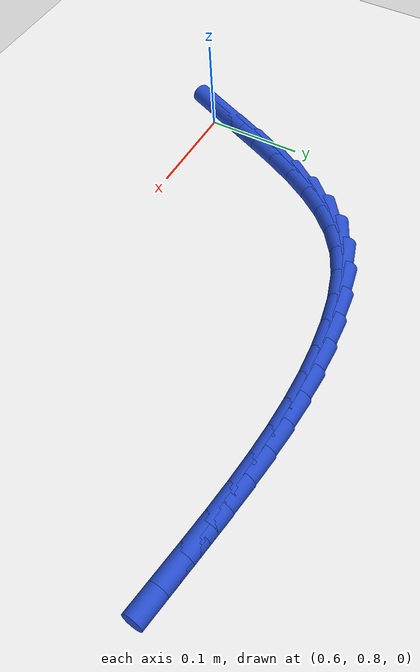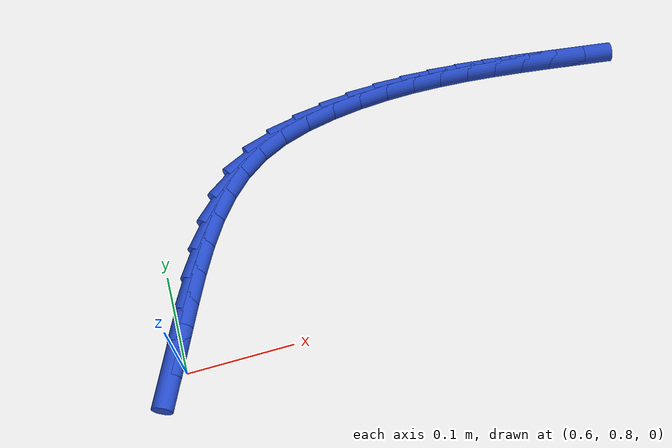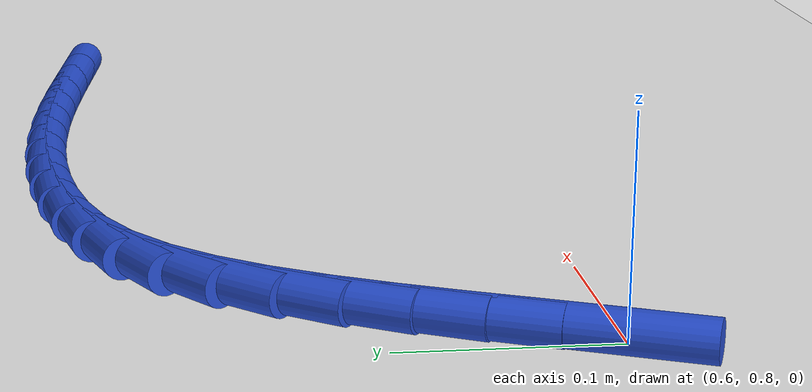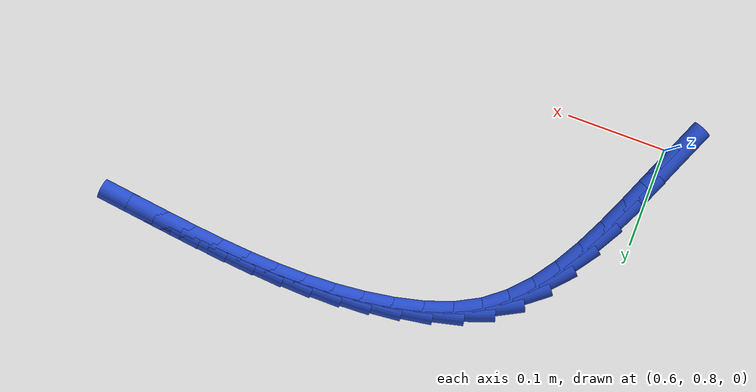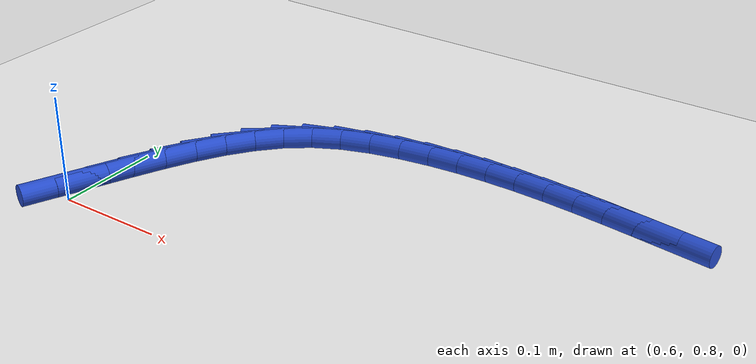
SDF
<sdf version="1.6">
 <world name="default">
  <model name="ground_plane">
   <static>1</static>
   <link name="link">
    <collision name="collision">
     <geometry><plane><normal>0 0 1</normal><size>100 100</size></plane></geometry>
     <surface><friction><ode><mu>100</mu><mu2>50</mu2></ode></friction></surface>
    </collision>
    <visual name="visual">
     <cast_shadows>0</cast_shadows>
     <geometry><plane><normal>0 0 1</normal><size>100 100</size></plane></geometry>
     <material>
      <script><uri>file://media/materials/scripts/gazebo.material</uri><name>Gazebo/WhiteGlow</name></script>
     </material>
    </visual>
   </link>
  </model>
  <model name="line">
   <link name="link_35">
    <pose>0.5892011900685988 0.8050717439799011 0.01 0 1.57 1.158797115858197</pose>
    <collision name="collision">
     <geometry><cylinder><radius>0.01</radius><length>0.08</length></cylinder></geometry>
    </collision>
    <visual name="visual">
     <material>
      <script><name>Gazebo/Blue</name><uri>file://media/materials/scripts/gazebo.material</uri></script>
     </material>
     <geometry><cylinder><radius>0.01</radius><length>0.08</length></cylinder></geometry>
    </visual>
   </link>
   <link name="link_36">
    <pose>0.6019191846150993 0.8341740306946807 0.01 0 1.57 1.1629992175297037</pose>
    <collision name="collision">
     <geometry><cylinder><radius>0.01</radius><length>0.08</length></cylinder></geometry>
    </collision>
    <visual name="visual">
     <material>
      <script><name>Gazebo/Blue</name><uri>file://media/materials/scripts/gazebo.material</uri></script>
     </material>
     <geometry><cylinder><radius>0.01</radius><length>0.08</length></cylinder></geometry>
    </visual>
   </link>
   <link name="link_37">
    <pose>0.614505534557941 0.8633081100338446 0.01 0 1.57 1.1453234444082492</pose>
    <collision name="collision">
     <geometry><cylinder><radius>0.01</radius><length>0.08</length></cylinder></geometry>
    </collision>
    <visual name="visual">
     <material>
      <script><name>Gazebo/Blue</name><uri>file://media/materials/scripts/gazebo.material</uri></script>
     </material>
     <geometry><cylinder><radius>0.01</radius><length>0.08</length></cylinder></geometry>
    </visual>
   </link>
   <link name="link_38">
    <pose>0.627461701556716 0.891899262433238 0.01 0 1.57 1.104511327123926</pose>
    <collision name="collision">
     <geometry><cylinder><radius>0.01</radius><length>0.08</length></cylinder></geometry>
    </collision>
    <visual name="visual">
     <material>
      <script><name>Gazebo/Blue</name><uri>file://media/materials/scripts/gazebo.material</uri></script>
     </material>
     <geometry><cylinder><radius>0.01</radius><length>0.08</length></cylinder></geometry>
    </visual>
   </link>
   <link name="link_39">
    <pose>0.6412891472710159 0.9193727683287055 0.01 0 1.57 1.038069745802098</pose>
    <collision name="collision">
     <geometry><cylinder><radius>0.01</radius><length>0.08</length></cylinder></geometry>
    </collision>
    <visual name="visual">
     <material>
      <script><name>Gazebo/Blue</name><uri>file://media/materials/scripts/gazebo.material</uri></script>
     </material>
     <geometry><cylinder><radius>0.01</radius><length>0.08</length></cylinder></geometry>
    </visual>
   </link>
   <link name="link_40">
    <pose>0.656489333360433 0.9451539081560925 0.01 0 1.57 0.9427442892445876</pose>
    <collision name="collision">
     <geometry><cylinder><radius>0.01</radius><length>0.08</length></cylinder></geometry>
    </collision>
    <visual name="visual">
     <material>
      <script><name>Gazebo/Blue</name><uri>file://media/materials/scripts/gazebo.material</uri></script>
     </material>
     <geometry><cylinder><radius>0.01</radius><length>0.08</length></cylinder></geometry>
    </visual>
   </link>
   <link name="link_41">
    <pose>0.6735637214845588 0.9686679623512437 0.01 0 1.57 0.8158505385536886</pose>
    <collision name="collision">
     <geometry><cylinder><radius>0.01</radius><length>0.08</length></cylinder></geometry>
    </collision>
    <visual name="visual">
     <material>
      <script><name>Gazebo/Blue</name><uri>file://media/materials/scripts/gazebo.material</uri></script>
     </material>
     <geometry><cylinder><radius>0.01</radius><length>0.08</length></cylinder></geometry>
    </visual>
   </link>
   <link name="link_42">
    <pose>0.6930137733029857 0.9893402113500045 0.01 0 1.57 0.6579700808070119</pose>
    <collision name="collision">
     <geometry><cylinder><radius>0.01</radius><length>0.08</length></cylinder></geometry>
    </collision>
    <visual name="visual">
     <material>
      <script><name>Gazebo/Blue</name><uri>file://media/materials/scripts/gazebo.material</uri></script>
     </material>
     <geometry><cylinder><radius>0.01</radius><length>0.08</length></cylinder></geometry>
    </visual>
   </link>
   <link name="link_43">
    <pose>0.7153409504753052 1.0065959355882195 0.01 0 1.57 0.48001958919318843</pose>
    <collision name="collision">
     <geometry><cylinder><radius>0.01</radius><length>0.08</length></cylinder></geometry>
    </collision>
    <visual name="visual">
     <material>
      <script><name>Gazebo/Blue</name><uri>file://media/materials/scripts/gazebo.material</uri></script>
     </material>
     <geometry><cylinder><radius>0.01</radius><length>0.08</length></cylinder></geometry>
    </visual>
   </link>
   <link name="link_44">
    <pose>0.7409533080757175 1.0199306444176994 0.01 0 1.57 0.32969359713967095</pose>
    <collision name="collision">
     <geometry><cylinder><radius>0.01</radius><length>0.08</length></cylinder></geometry>
    </collision>
    <visual name="visual">
     <material>
      <script><name>Gazebo/Blue</name><uri>file://media/materials/scripts/gazebo.material</uri></script>
     </material>
     <geometry><cylinder><radius>0.01</radius><length>0.08</length></cylinder></geometry>
    </visual>
   </link>
   <link name="link_45">
    <pose>0.7692364023389191 1.0296086258023132 0.01 0 1.57 0.2237279969301156</pose>
    <collision name="collision">
     <geometry><cylinder><radius>0.01</radius><length>0.08</length></cylinder></geometry>
    </collision>
    <visual name="visual">
     <material>
      <script><name>Gazebo/Blue</name><uri>file://media/materials/scripts/gazebo.material</uri></script>
     </material>
     <geometry><cylinder><radius>0.01</radius><length>0.08</length></cylinder></geometry>
    </visual>
   </link>
   <link name="link_46">
    <pose>0.7989450000686684 1.0363684346727768 0.01 0 1.57 0.15007415062330498</pose>
    <collision name="collision">
     <geometry><cylinder><radius>0.01</radius><length>0.08</length></cylinder></geometry>
    </collision>
    <visual name="visual">
     <material>
      <script><name>Gazebo/Blue</name><uri>file://media/materials/scripts/gazebo.material</uri></script>
     </material>
     <geometry><cylinder><radius>0.01</radius><length>0.08</length></cylinder></geometry>
    </visual>
   </link>
   <link name="link_47">
    <pose>0.8289473169587279 1.0409051169102694 0.01 0 1.57 0.0891030732480868</pose>
    <collision name="collision">
     <geometry><cylinder><radius>0.01</radius><length>0.08</length></cylinder></geometry>
    </collision>
    <visual name="visual">
     <material>
      <script><name>Gazebo/Blue</name><uri>file://media/materials/scripts/gazebo.material</uri></script>
     </material>
     <geometry><cylinder><radius>0.01</radius><length>0.08</length></cylinder></geometry>
    </visual>
   </link>
   <link name="link_48">
    <pose>0.8589165535003263 1.0435825574616524 0.01 0 1.57 0.03501761102344548</pose>
    <collision name="collision">
     <geometry><cylinder><radius>0.01</radius><length>0.08</length></cylinder></geometry>
    </collision>
    <visual name="visual">
     <material>
      <script><name>Gazebo/Blue</name><uri>file://media/materials/scripts/gazebo.material</uri></script>
     </material>
     <geometry><cylinder><radius>0.01</radius><length>0.08</length></cylinder></geometry>
    </visual>
   </link>
   <link name="link_49">
    <pose>0.888850292932611 1.0446311941649518 0.01 0 1.57 -0.011709678779971793</pose>
    <collision name="collision">
     <geometry><cylinder><radius>0.01</radius><length>0.08</length></cylinder></geometry>
    </collision>
    <visual name="visual">
     <material>
      <script><name>Gazebo/Blue</name><uri>file://media/materials/scripts/gazebo.material</uri></script>
     </material>
     <geometry><cylinder><radius>0.01</radius><length>0.08</length></cylinder></geometry>
    </visual>
   </link>
   <link name="link_50">
    <pose>0.9187470122362672 1.0442810971838181 0.01 0 1.57 -0.050822015321530814</pose>
    <collision name="collision">
     <geometry><cylinder><radius>0.01</radius><length>0.08</length></cylinder></geometry>
    </collision>
    <visual name="visual">
     <material>
      <script><name>Gazebo/Blue</name><uri>file://media/materials/scripts/gazebo.material</uri></script>
     </material>
     <geometry><cylinder><radius>0.01</radius><length>0.08</length></cylinder></geometry>
    </visual>
   </link>
   <link name="link_51">
    <pose>0.9486051883919803 1.0427623366819025 0.01 0 1.57 -0.08222564272332829</pose>
    <collision name="collision">
     <geometry><cylinder><radius>0.01</radius><length>0.08</length></cylinder></geometry>
    </collision>
    <visual name="visual">
     <material>
      <script><name>Gazebo/Blue</name><uri>file://media/materials/scripts/gazebo.material</uri></script>
     </material>
     <geometry><cylinder><radius>0.01</radius><length>0.08</length></cylinder></geometry>
    </visual>
   </link>
   <link name="link_52">
    <pose>0.978423298380436 1.040304982822856 0.01 0 1.57 -0.10592332431333239</pose>
    <collision name="collision">
     <geometry><cylinder><radius>0.01</radius><length>0.08</length></cylinder></geometry>
    </collision>
    <visual name="visual">
     <material>
      <script><name>Gazebo/Blue</name><uri>file://media/materials/scripts/gazebo.material</uri></script>
     </material>
     <geometry><cylinder><radius>0.01</radius><length>0.08</length></cylinder></geometry>
    </visual>
   </link>
   <link name="link_53">
    <pose>1.008199819182319 1.037139105770329 0.01 0 1.57 -0.12195855962618113</pose>
    <collision name="collision">
     <geometry><cylinder><radius>0.01</radius><length>0.08</length></cylinder></geometry>
    </collision>
    <visual name="visual">
     <material>
      <script><name>Gazebo/Blue</name><uri>file://media/materials/scripts/gazebo.material</uri></script>
     </material>
     <geometry><cylinder><radius>0.01</radius><length>0.08</length></cylinder></geometry>
    </visual>
   </link>
   <link name="link_54">
    <pose>1.0379332277783155 1.0334947756879727 0.01 0 1.57 -0.13037361600656563</pose>
    <collision name="collision">
     <geometry><cylinder><radius>0.01</radius><length>0.08</length></cylinder></geometry>
    </collision>
    <visual name="visual">
     <material>
      <script><name>Gazebo/Blue</name><uri>file://media/materials/scripts/gazebo.material</uri></script>
     </material>
     <geometry><cylinder><radius>0.01</radius><length>0.08</length></cylinder></geometry>
    </visual>
   </link>
   <link name="link_55">
    <pose>1.0676220011491104 1.029602062739438 0.01 0 1.57 -0.13118159164379417</pose>
    <collision name="collision">
     <geometry><cylinder><radius>0.01</radius><length>0.08</length></cylinder></geometry>
    </collision>
    <visual name="visual">
     <material>
      <script><name>Gazebo/Blue</name><uri>file://media/materials/scripts/gazebo.material</uri></script>
     </material>
     <geometry><cylinder><radius>0.01</radius><length>0.08</length></cylinder></geometry>
    </visual>
   </link>
  </model>
 </world>
</sdf>
